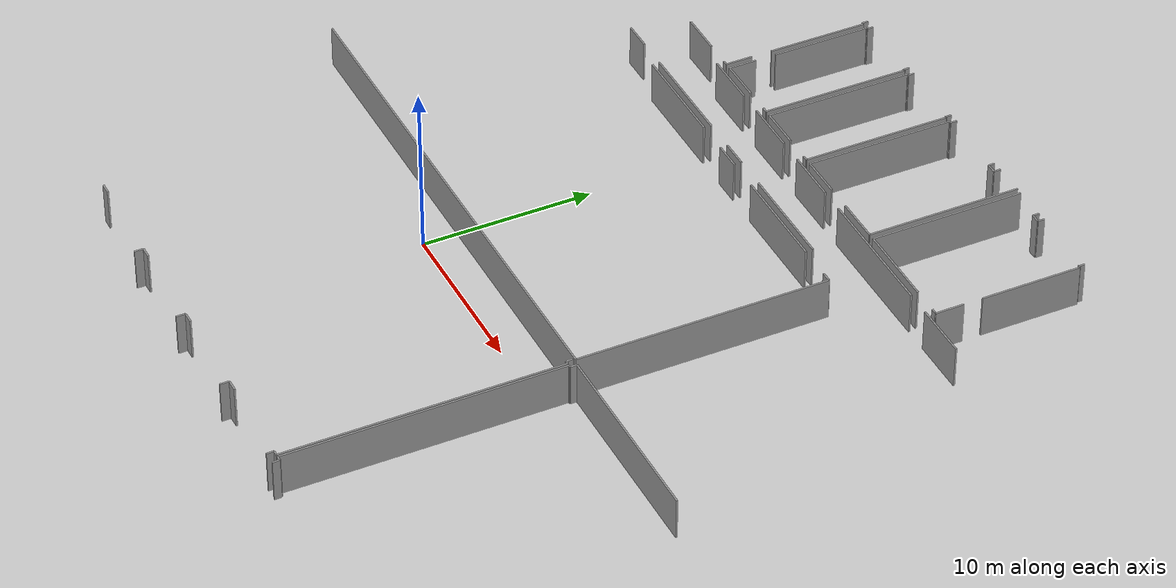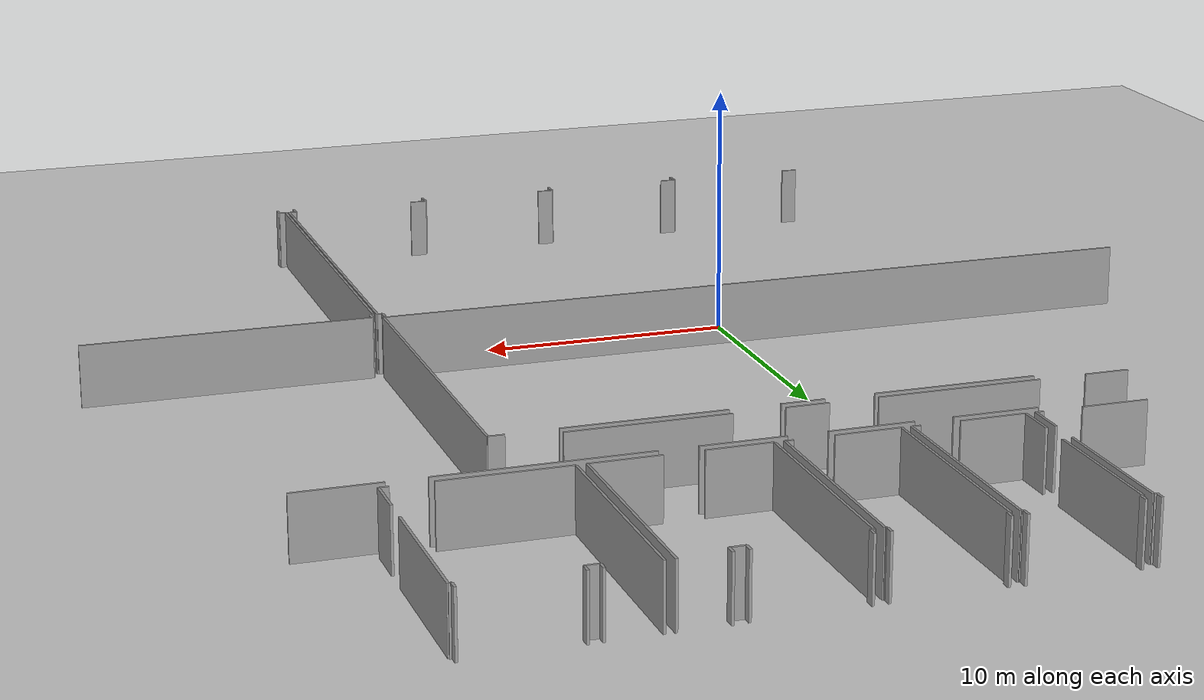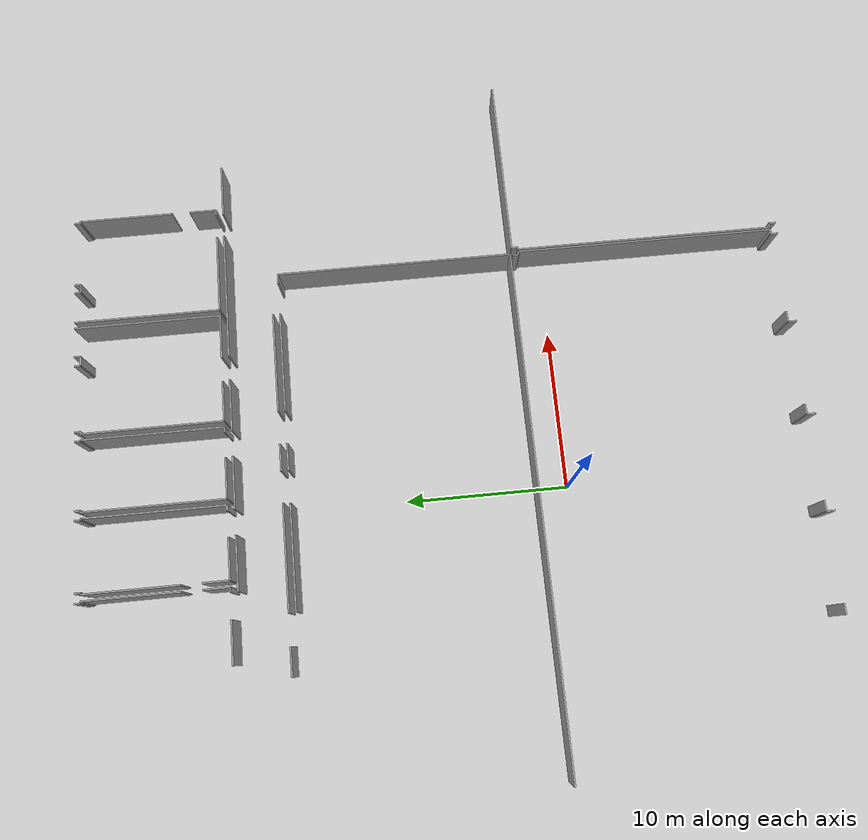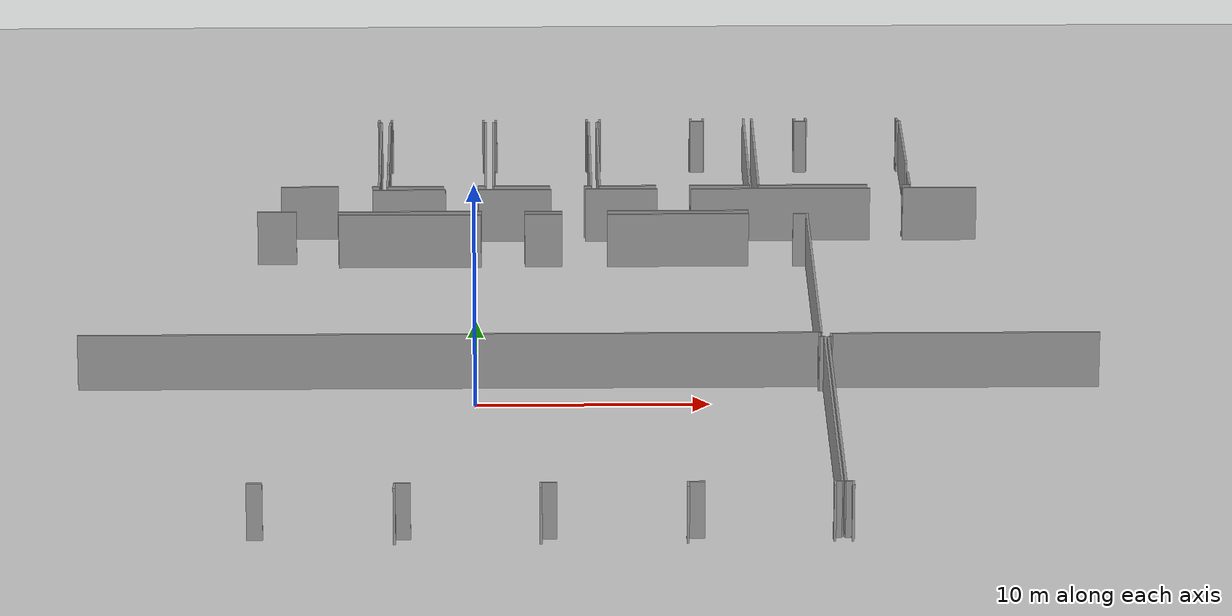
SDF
<sdf version="1.6">
 <world name="default">
  <model name="ground_plane">
   <static>1</static>
   <link name="link">
    <collision name="collision">
     <geometry><plane><normal>0 0 1</normal><size>100 100</size></plane></geometry>
     <surface><friction><ode><mu>100</mu><mu2>50</mu2></ode></friction></surface>
    </collision>
    <visual name="visual">
     <cast_shadows>0</cast_shadows>
     <geometry><plane><normal>0 0 1</normal><size>100 100</size></plane></geometry>
     <material>
      <script><uri>file://media/materials/scripts/gazebo.material</uri><name>Gazebo/Grey</name></script>
     </material>
    </visual>
   </link>
  </model>
  <model name="50010536_PLAN3">
   <static>1</static>
   <link name="Wall_479">
    <collision name="Wall_479_Collision">
     <geometry><box><size>0.376065771514 0.1 2.5</size></box></geometry>
     <pose>0.188032885757 0 1.25 0 0 0</pose>
    </collision>
    <visual name="Wall_479_Visual">
     <pose>0.188032885757 0 1.25 0 0 0</pose>
     <geometry><box><size>0.376065771514 0.1 2.5</size></box></geometry>
     <material>
      <script><uri>file://media/materials/scripts/gazebo.material</uri><name>Gazebo/Grey</name></script>
      <ambient>1 1 1 1</ambient>
     </material>
    </visual>
    <pose>97.9906675555 -0.027095832143 0 0 0 -1.57079632679</pose>
   </link>
   <link name="Wall_480">
    <collision name="Wall_480_Collision">
     <geometry><box><size>0.121893153033 0.1 2.5</size></box></geometry>
     <pose>0.0609465765165 0 1.25 0 0 0</pose>
    </collision>
    <visual name="Wall_480_Visual">
     <pose>0.0609465765165 0 1.25 0 0 0</pose>
     <geometry><box><size>0.121893153033 0.1 2.5</size></box></geometry>
     <material>
      <script><uri>file://media/materials/scripts/gazebo.material</uri><name>Gazebo/Grey</name></script>
      <ambient>1 1 1 1</ambient>
     </material>
    </visual>
    <pose>97.9906675555 -0.403161603657 0 0 0 0.0</pose>
   </link>
   <link name="Wall_481">
    <collision name="Wall_481_Collision">
     <geometry><box><size>5.84365933403 0.1 2.5</size></box></geometry>
     <pose>2.92182966702 0 1.25 0 0 0</pose>
    </collision>
    <visual name="Wall_481_Visual">
     <pose>2.92182966702 0 1.25 0 0 0</pose>
     <geometry><box><size>5.84365933403 0.1 2.5</size></box></geometry>
     <material>
      <script><uri>file://media/materials/scripts/gazebo.material</uri><name>Gazebo/Grey</name></script>
      <ambient>1 1 1 1</ambient>
     </material>
    </visual>
    <pose>98.1125607085 -0.403161603657 0 0 0 -1.57079632679</pose>
   </link>
   <link name="Wall_482">
    <collision name="Wall_482_Collision">
     <geometry><box><size>1.60060946577 0.1 2.5</size></box></geometry>
     <pose>0.800304732883 0 1.25 0 0 0</pose>
    </collision>
    <visual name="Wall_482_Visual">
     <pose>0.800304732883 0 1.25 0 0 0</pose>
     <geometry><box><size>1.60060946577 0.1 2.5</size></box></geometry>
     <material>
      <script><uri>file://media/materials/scripts/gazebo.material</uri><name>Gazebo/Grey</name></script>
      <ambient>1 1 1 1</ambient>
     </material>
    </visual>
    <pose>98.1125607085 -7.46981557312 0 0 0 -1.57079632679</pose>
   </link>
   <link name="Wall_483">
    <collision name="Wall_483_Collision">
     <geometry><box><size>0.304224994445 0.1 2.5</size></box></geometry>
     <pose>0.152112497222 0 1.25 0 0 0</pose>
    </collision>
    <visual name="Wall_483_Visual">
     <pose>0.152112497222 0 1.25 0 0 0</pose>
     <geometry><box><size>0.304224994445 0.1 2.5</size></box></geometry>
     <material>
      <script><uri>file://media/materials/scripts/gazebo.material</uri><name>Gazebo/Grey</name></script>
      <ambient>1 1 1 1</ambient>
     </material>
    </visual>
    <pose>98.1125607085 -9.07042503889 0 0 0 3.14159265359</pose>
   </link>
   <link name="Wall_484">
    <collision name="Wall_484_Collision">
     <geometry><box><size>2.59582532669 0.1 2.5</size></box></geometry>
     <pose>1.29791266334 0 1.25 0 0 0</pose>
    </collision>
    <visual name="Wall_484_Visual">
     <pose>1.29791266334 0 1.25 0 0 0</pose>
     <geometry><box><size>2.59582532669 0.1 2.5</size></box></geometry>
     <material>
      <script><uri>file://media/materials/scripts/gazebo.material</uri><name>Gazebo/Grey</name></script>
      <ambient>1 1 1 1</ambient>
     </material>
    </visual>
    <pose>96.2704504333 -9.07042503889 0 0 0 3.13895129796</pose>
   </link>
   <link name="Wall_485">
    <collision name="Wall_485_Collision">
     <geometry><box><size>1.64327206933 0.1 2.5</size></box></geometry>
     <pose>0.821636034663 0 1.25 0 0 0</pose>
    </collision>
    <visual name="Wall_485_Visual">
     <pose>0.821636034663 0 1.25 0 0 0</pose>
     <geometry><box><size>1.64327206933 0.1 2.5</size></box></geometry>
     <material>
      <script><uri>file://media/materials/scripts/gazebo.material</uri><name>Gazebo/Grey</name></script>
      <ambient>1 1 1 1</ambient>
     </material>
    </visual>
    <pose>98.5043964067 -9.07118687109 0 0 0 1.57079632679</pose>
   </link>
   <link name="Wall_486">
    <collision name="Wall_486_Collision">
     <geometry><box><size>5.79937148843 0.1 2.5</size></box></geometry>
     <pose>2.89968574421 0 1.25 0 0 0</pose>
    </collision>
    <visual name="Wall_486_Visual">
     <pose>2.89968574421 0 1.25 0 0 0</pose>
     <geometry><box><size>5.79937148843 0.1 2.5</size></box></geometry>
     <material>
      <script><uri>file://media/materials/scripts/gazebo.material</uri><name>Gazebo/Grey</name></script>
      <ambient>1 1 1 1</ambient>
     </material>
    </visual>
    <pose>98.5043964067 -6.19577817986 0 0 0 1.57079632679</pose>
   </link>
   <link name="Wall_487">
    <collision name="Wall_487_Collision">
     <geometry><box><size>0.0860870393296 0.1 2.5</size></box></geometry>
     <pose>0.0430435196648 0 1.25 0 0 0</pose>
    </collision>
    <visual name="Wall_487_Visual">
     <pose>0.0430435196648 0 1.25 0 0 0</pose>
     <geometry><box><size>0.0860870393296 0.1 2.5</size></box></geometry>
     <material>
      <script><uri>file://media/materials/scripts/gazebo.material</uri><name>Gazebo/Grey</name></script>
      <ambient>1 1 1 1</ambient>
     </material>
    </visual>
    <pose>98.5043964067 -0.396406691426 0 0 0 0.0</pose>
   </link>
   <link name="Wall_488">
    <collision name="Wall_488_Collision">
     <geometry><box><size>0.375380122528 0.1 2.5</size></box></geometry>
     <pose>0.187690061264 0 1.25 0 0 0</pose>
    </collision>
    <visual name="Wall_488_Visual">
     <pose>0.187690061264 0 1.25 0 0 0</pose>
     <geometry><box><size>0.375380122528 0.1 2.5</size></box></geometry>
     <material>
      <script><uri>file://media/materials/scripts/gazebo.material</uri><name>Gazebo/Grey</name></script>
      <ambient>1 1 1 1</ambient>
     </material>
    </visual>
    <pose>98.590483446 -0.396406691426 0 0 0 1.57079632679</pose>
   </link>
   <link name="Wall_489">
    <collision name="Wall_489_Collision">
     <geometry><box><size>0.374440529473 0.1 2.5</size></box></geometry>
     <pose>0.187220264737 0 1.25 0 0 0</pose>
    </collision>
    <visual name="Wall_489_Visual">
     <pose>0.187220264737 0 1.25 0 0 0</pose>
     <geometry><box><size>0.374440529473 0.1 2.5</size></box></geometry>
     <material>
      <script><uri>file://media/materials/scripts/gazebo.material</uri><name>Gazebo/Grey</name></script>
      <ambient>1 1 1 1</ambient>
     </material>
    </visual>
    <pose>102.836174333 -0.0210265688982 0 0 0 -1.57079632679</pose>
   </link>
   <link name="Wall_490">
    <collision name="Wall_490_Collision">
     <geometry><box><size>0.0942132495318 0.1 2.5</size></box></geometry>
     <pose>0.0471066247659 0 1.25 0 0 0</pose>
    </collision>
    <visual name="Wall_490_Visual">
     <pose>0.0471066247659 0 1.25 0 0 0</pose>
     <geometry><box><size>0.0942132495318 0.1 2.5</size></box></geometry>
     <material>
      <script><uri>file://media/materials/scripts/gazebo.material</uri><name>Gazebo/Grey</name></script>
      <ambient>1 1 1 1</ambient>
     </material>
    </visual>
    <pose>102.836174333 -0.395467098372 0 0 0 0.0</pose>
   </link>
   <link name="Wall_491">
    <collision name="Wall_491_Collision">
     <geometry><box><size>8.67064089134 0.1 2.5</size></box></geometry>
     <pose>4.33532044567 0 1.25 0 0 0</pose>
    </collision>
    <visual name="Wall_491_Visual">
     <pose>4.33532044567 0 1.25 0 0 0</pose>
     <geometry><box><size>8.67064089134 0.1 2.5</size></box></geometry>
     <material>
      <script><uri>file://media/materials/scripts/gazebo.material</uri><name>Gazebo/Grey</name></script>
      <ambient>1 1 1 1</ambient>
     </material>
    </visual>
    <pose>102.930387582 -0.395467098372 0 0 0 -1.57079632679</pose>
   </link>
   <link name="Wall_492">
    <collision name="Wall_492_Collision">
     <geometry><box><size>0.340792940355 0.1 2.5</size></box></geometry>
     <pose>0.170396470177 0 1.25 0 0 0</pose>
    </collision>
    <visual name="Wall_492_Visual">
     <pose>0.170396470177 0 1.25 0 0 0</pose>
     <geometry><box><size>0.340792940355 0.1 2.5</size></box></geometry>
     <material>
      <script><uri>file://media/materials/scripts/gazebo.material</uri><name>Gazebo/Grey</name></script>
      <ambient>1 1 1 1</ambient>
     </material>
    </visual>
    <pose>102.930387582 -9.06610798972 0 0 0 3.14159265359</pose>
   </link>
   <link name="Wall_493">
    <collision name="Wall_493_Collision">
     <geometry><box><size>2.54909562245 0.1 2.5</size></box></geometry>
     <pose>1.27454781123 0 1.25 0 0 0</pose>
    </collision>
    <visual name="Wall_493_Visual">
     <pose>1.27454781123 0 1.25 0 0 0</pose>
     <geometry><box><size>2.54909562245 0.1 2.5</size></box></geometry>
     <material>
      <script><uri>file://media/materials/scripts/gazebo.material</uri><name>Gazebo/Grey</name></script>
      <ambient>1 1 1 1</ambient>
     </material>
    </visual>
    <pose>101.053486969 -9.06610798972 0 0 0 -3.13960022746</pose>
   </link>
   <link name="Wall_494">
    <collision name="Wall_494_Collision">
     <geometry><box><size>8.68054471003 0.1 2.5</size></box></geometry>
     <pose>4.34027235501 0 1.25 0 0 0</pose>
    </collision>
    <visual name="Wall_494_Visual">
     <pose>4.34027235501 0 1.25 0 0 0</pose>
     <geometry><box><size>8.68054471003 0.1 2.5</size></box></geometry>
     <material>
      <script><uri>file://media/materials/scripts/gazebo.material</uri><name>Gazebo/Grey</name></script>
      <ambient>1 1 1 1</ambient>
     </material>
    </visual>
    <pose>103.30597086 -9.0760118084 0 0 0 1.57079632679</pose>
   </link>
   <link name="Wall_495">
    <collision name="Wall_495_Collision">
     <geometry><box><size>0.107672285179 0.1 2.5</size></box></geometry>
     <pose>0.0538361425896 0 1.25 0 0 0</pose>
    </collision>
    <visual name="Wall_495_Visual">
     <pose>0.0538361425896 0 1.25 0 0 0</pose>
     <geometry><box><size>0.107672285179 0.1 2.5</size></box></geometry>
     <material>
      <script><uri>file://media/materials/scripts/gazebo.material</uri><name>Gazebo/Grey</name></script>
      <ambient>1 1 1 1</ambient>
     </material>
    </visual>
    <pose>103.30597086 -0.395467098372 0 0 0 0.0</pose>
   </link>
   <link name="Wall_496">
    <collision name="Wall_496_Collision">
     <geometry><box><size>0.357807192966 0.1 2.5</size></box></geometry>
     <pose>0.178903596483 0 1.25 0 0 0</pose>
    </collision>
    <visual name="Wall_496_Visual">
     <pose>0.178903596483 0 1.25 0 0 0</pose>
     <geometry><box><size>0.357807192966 0.1 2.5</size></box></geometry>
     <material>
      <script><uri>file://media/materials/scripts/gazebo.material</uri><name>Gazebo/Grey</name></script>
      <ambient>1 1 1 1</ambient>
     </material>
    </visual>
    <pose>103.413643145 -0.395467098372 0 0 0 1.57079632679</pose>
   </link>
   <link name="Wall_497">
    <collision name="Wall_497_Collision">
     <geometry><box><size>0.357807192966 0.1 2.5</size></box></geometry>
     <pose>0.178903596483 0 1.25 0 0 0</pose>
    </collision>
    <visual name="Wall_497_Visual">
     <pose>0.178903596483 0 1.25 0 0 0</pose>
     <geometry><box><size>0.357807192966 0.1 2.5</size></box></geometry>
     <material>
      <script><uri>file://media/materials/scripts/gazebo.material</uri><name>Gazebo/Grey</name></script>
      <ambient>1 1 1 1</ambient>
     </material>
    </visual>
    <pose>107.631908072 -0.0376599054058 0 0 0 -1.57079632679</pose>
   </link>
   <link name="Wall_498">
    <collision name="Wall_498_Collision">
     <geometry><box><size>0.0754213884392 0.1 2.5</size></box></geometry>
     <pose>0.0377106942196 0 1.25 0 0 0</pose>
    </collision>
    <visual name="Wall_498_Visual">
     <pose>0.0377106942196 0 1.25 0 0 0</pose>
     <geometry><box><size>0.0754213884392 0.1 2.5</size></box></geometry>
     <material>
      <script><uri>file://media/materials/scripts/gazebo.material</uri><name>Gazebo/Grey</name></script>
      <ambient>1 1 1 1</ambient>
     </material>
    </visual>
    <pose>107.631908072 -0.395467098372 0 0 0 0.0</pose>
   </link>
   <link name="Wall_499">
    <collision name="Wall_499_Collision">
     <geometry><box><size>8.68130654223 0.1 2.5</size></box></geometry>
     <pose>4.34065327112 0 1.25 0 0 0</pose>
    </collision>
    <visual name="Wall_499_Visual">
     <pose>4.34065327112 0 1.25 0 0 0</pose>
     <geometry><box><size>8.68130654223 0.1 2.5</size></box></geometry>
     <material>
      <script><uri>file://media/materials/scripts/gazebo.material</uri><name>Gazebo/Grey</name></script>
      <ambient>1 1 1 1</ambient>
     </material>
    </visual>
    <pose>107.707329461 -0.395467098372 0 0 0 -1.57079632679</pose>
   </link>
   <link name="Wall_500">
    <collision name="Wall_500_Collision">
     <geometry><box><size>0.326572072501 0.1 2.5</size></box></geometry>
     <pose>0.163286036251 0 1.25 0 0 0</pose>
    </collision>
    <visual name="Wall_500_Visual">
     <pose>0.163286036251 0 1.25 0 0 0</pose>
     <geometry><box><size>0.326572072501 0.1 2.5</size></box></geometry>
     <material>
      <script><uri>file://media/materials/scripts/gazebo.material</uri><name>Gazebo/Grey</name></script>
      <ambient>1 1 1 1</ambient>
     </material>
    </visual>
    <pose>107.707329461 -9.07677364061 0 0 0 3.14159265359</pose>
   </link>
   <link name="Wall_501">
    <collision name="Wall_501_Collision">
     <geometry><box><size>2.53055276046 0.1 2.5</size></box></geometry>
     <pose>1.26527638023 0 1.25 0 0 0</pose>
    </collision>
    <visual name="Wall_501_Visual">
     <pose>1.26527638023 0 1.25 0 0 0</pose>
     <geometry><box><size>2.53055276046 0.1 2.5</size></box></geometry>
     <material>
      <script><uri>file://media/materials/scripts/gazebo.material</uri><name>Gazebo/Grey</name></script>
      <ambient>1 1 1 1</ambient>
     </material>
    </visual>
    <pose>105.836523506 -9.07677364061 0 0 0 3.14129159991</pose>
   </link>
   <link name="Wall_502">
    <collision name="Wall_502_Collision">
     <geometry><box><size>8.67610068882 0.1 2.5</size></box></geometry>
     <pose>4.33805034441 0 1.25 0 0 0</pose>
    </collision>
    <visual name="Wall_502_Visual">
     <pose>4.33805034441 0 1.25 0 0 0</pose>
     <geometry><box><size>8.67610068882 0.1 2.5</size></box></geometry>
     <material>
      <script><uri>file://media/materials/scripts/gazebo.material</uri><name>Gazebo/Grey</name></script>
      <ambient>1 1 1 1</ambient>
     </material>
    </visual>
    <pose>108.090023172 -9.08058280164 0 0 0 1.57079632679</pose>
   </link>
   <link name="Wall_503">
    <collision name="Wall_503_Collision">
     <geometry><box><size>0.132812747992 0.1 2.5</size></box></geometry>
     <pose>0.0664063739961 0 1.25 0 0 0</pose>
    </collision>
    <visual name="Wall_503_Visual">
     <pose>0.0664063739961 0 1.25 0 0 0</pose>
     <geometry><box><size>0.132812747992 0.1 2.5</size></box></geometry>
     <material>
      <script><uri>file://media/materials/scripts/gazebo.material</uri><name>Gazebo/Grey</name></script>
      <ambient>1 1 1 1</ambient>
     </material>
    </visual>
    <pose>108.090023172 -0.404482112815 0 0 0 0.0</pose>
   </link>
   <link name="Wall_504">
    <collision name="Wall_504_Collision">
     <geometry><box><size>0.382084245945 0.1 2.5</size></box></geometry>
     <pose>0.191042122972 0 1.25 0 0 0</pose>
    </collision>
    <visual name="Wall_504_Visual">
     <pose>0.191042122972 0 1.25 0 0 0</pose>
     <geometry><box><size>0.382084245945 0.1 2.5</size></box></geometry>
     <material>
      <script><uri>file://media/materials/scripts/gazebo.material</uri><name>Gazebo/Grey</name></script>
      <ambient>1 1 1 1</ambient>
     </material>
    </visual>
    <pose>108.22283592 -0.404482112815 0 0 0 1.57079632679</pose>
   </link>
   <link name="Wall_505">
    <collision name="Wall_505_Collision">
     <geometry><box><size>0.372586737771 0.1 2.5</size></box></geometry>
     <pose>0.186293368886 0 1.25 0 0 0</pose>
    </collision>
    <visual name="Wall_505_Visual">
     <pose>0.186293368886 0 1.25 0 0 0</pose>
     <geometry><box><size>0.372586737771 0.1 2.5</size></box></geometry>
     <material>
      <script><uri>file://media/materials/scripts/gazebo.material</uri><name>Gazebo/Grey</name></script>
      <ambient>1 1 1 1</ambient>
     </material>
    </visual>
    <pose>112.433228581 -0.0223978668698 0 0 0 -1.57079632679</pose>
   </link>
   <link name="Wall_506">
    <collision name="Wall_506_Collision">
     <geometry><box><size>0.588642351522 0.1 2.5</size></box></geometry>
     <pose>0.294321175761 0 1.25 0 0 0</pose>
    </collision>
    <visual name="Wall_506_Visual">
     <pose>0.294321175761 0 1.25 0 0 0</pose>
     <geometry><box><size>0.588642351522 0.1 2.5</size></box></geometry>
     <material>
      <script><uri>file://media/materials/scripts/gazebo.material</uri><name>Gazebo/Grey</name></script>
      <ambient>1 1 1 1</ambient>
     </material>
    </visual>
    <pose>112.433228581 -0.394984604641 0 0 0 0.0</pose>
   </link>
   <link name="Wall_507">
    <collision name="Wall_507_Collision">
     <geometry><box><size>0.393968828366 0.1 2.5</size></box></geometry>
     <pose>0.196984414183 0 1.25 0 0 0</pose>
    </collision>
    <visual name="Wall_507_Visual">
     <pose>0.196984414183 0 1.25 0 0 0</pose>
     <geometry><box><size>0.393968828366 0.1 2.5</size></box></geometry>
     <material>
      <script><uri>file://media/materials/scripts/gazebo.material</uri><name>Gazebo/Grey</name></script>
      <ambient>1 1 1 1</ambient>
     </material>
    </visual>
    <pose>113.021870933 -0.394984604641 0 0 0 1.57079632679</pose>
   </link>
   <link name="Wall_508">
    <collision name="Wall_508_Collision">
     <geometry><box><size>9.06940926261 0.1 2.5</size></box></geometry>
     <pose>4.5347046313 0 1.25 0 0 0</pose>
    </collision>
    <visual name="Wall_508_Visual">
     <pose>4.5347046313 0 1.25 0 0 0</pose>
     <geometry><box><size>9.06940926261 0.1 2.5</size></box></geometry>
     <material>
      <script><uri>file://media/materials/scripts/gazebo.material</uri><name>Gazebo/Grey</name></script>
      <ambient>1 1 1 1</ambient>
     </material>
    </visual>
    <pose>114.896739993 -0.00101577627527 0 0 0 -1.57079632679</pose>
   </link>
   <link name="Wall_509">
    <collision name="Wall_509_Collision">
     <geometry><box><size>2.73269212456 0.1 2.5</size></box></geometry>
     <pose>1.36634606228 0 1.25 0 0 0</pose>
    </collision>
    <visual name="Wall_509_Visual">
     <pose>1.36634606228 0 1.25 0 0 0</pose>
     <geometry><box><size>2.73269212456 0.1 2.5</size></box></geometry>
     <material>
      <script><uri>file://media/materials/scripts/gazebo.material</uri><name>Gazebo/Grey</name></script>
      <ambient>1 1 1 1</ambient>
     </material>
    </visual>
    <pose>114.896739993 -9.07042503889 0 0 0 3.14159265359</pose>
   </link>
   <link name="Wall_510">
    <collision name="Wall_510_Collision">
     <geometry><box><size>2.55088839572 0.1 2.5</size></box></geometry>
     <pose>1.27544419786 0 1.25 0 0 0</pose>
    </collision>
    <visual name="Wall_510_Visual">
     <pose>1.27544419786 0 1.25 0 0 0</pose>
     <geometry><box><size>2.55088839572 0.1 2.5</size></box></geometry>
     <material>
      <script><uri>file://media/materials/scripts/gazebo.material</uri><name>Gazebo/Grey</name></script>
      <ambient>1 1 1 1</ambient>
     </material>
    </visual>
    <pose>110.640891344 -9.07042503889 0 0 0 -3.137610594</pose>
   </link>
   <link name="Wall_511">
    <collision name="Wall_511_Collision">
     <geometry><box><size>9.03812335333 0.1 2.5</size></box></geometry>
     <pose>4.51906167667 0 1.25 0 0 0</pose>
    </collision>
    <visual name="Wall_511_Visual">
     <pose>4.51906167667 0 1.25 0 0 0</pose>
     <geometry><box><size>9.03812335333 0.1 2.5</size></box></geometry>
     <material>
      <script><uri>file://media/materials/scripts/gazebo.material</uri><name>Gazebo/Grey</name></script>
      <ambient>1 1 1 1</ambient>
     </material>
    </visual>
    <pose>115.286544139 -9.0605212202 0 0 0 1.57079632679</pose>
   </link>
   <link name="Wall_512">
    <collision name="Wall_512_Collision">
     <geometry><box><size>0.382084245945 0.1 2.5</size></box></geometry>
     <pose>0.191042122972 0 1.25 0 0 0</pose>
    </collision>
    <visual name="Wall_512_Visual">
     <pose>0.191042122972 0 1.25 0 0 0</pose>
     <geometry><box><size>0.382084245945 0.1 2.5</size></box></geometry>
     <material>
      <script><uri>file://media/materials/scripts/gazebo.material</uri><name>Gazebo/Grey</name></script>
      <ambient>1 1 1 1</ambient>
     </material>
    </visual>
    <pose>117.25638828 -0.0223978668698 0 0 0 -1.57079632679</pose>
   </link>
   <link name="Wall_513">
    <collision name="Wall_513_Collision">
     <geometry><box><size>0.534806208932 0.1 2.5</size></box></geometry>
     <pose>0.267403104466 0 1.25 0 0 0</pose>
    </collision>
    <visual name="Wall_513_Visual">
     <pose>0.267403104466 0 1.25 0 0 0</pose>
     <geometry><box><size>0.534806208932 0.1 2.5</size></box></geometry>
     <material>
      <script><uri>file://media/materials/scripts/gazebo.material</uri><name>Gazebo/Grey</name></script>
      <ambient>1 1 1 1</ambient>
     </material>
    </visual>
    <pose>117.25638828 -0.404482112815 0 0 0 0.0</pose>
   </link>
   <link name="Wall_514">
    <collision name="Wall_514_Collision">
     <geometry><box><size>0.398463638384 0.1 2.5</size></box></geometry>
     <pose>0.199231819192 0 1.25 0 0 0</pose>
    </collision>
    <visual name="Wall_514_Visual">
     <pose>0.199231819192 0 1.25 0 0 0</pose>
     <geometry><box><size>0.398463638384 0.1 2.5</size></box></geometry>
     <material>
      <script><uri>file://media/materials/scripts/gazebo.material</uri><name>Gazebo/Grey</name></script>
      <ambient>1 1 1 1</ambient>
     </material>
    </visual>
    <pose>117.791194489 -0.404482112815 0 0 0 1.57079632679</pose>
   </link>
   <link name="Wall_515">
    <collision name="Wall_515_Collision">
     <geometry><box><size>0.371164650986 0.1 2.5</size></box></geometry>
     <pose>0.185582325493 0 1.25 0 0 0</pose>
    </collision>
    <visual name="Wall_515_Visual">
     <pose>0.185582325493 0 1.25 0 0 0</pose>
     <geometry><box><size>0.371164650986 0.1 2.5</size></box></geometry>
     <material>
      <script><uri>file://media/materials/scripts/gazebo.material</uri><name>Gazebo/Grey</name></script>
      <ambient>1 1 1 1</ambient>
     </material>
    </visual>
    <pose>122.016061962 -0.00601847443101 0 0 0 -1.57079632679</pose>
   </link>
   <link name="Wall_516">
    <collision name="Wall_516_Collision">
     <geometry><box><size>0.125448369996 0.1 2.5</size></box></geometry>
     <pose>0.0627241849982 0 1.25 0 0 0</pose>
    </collision>
    <visual name="Wall_516_Visual">
     <pose>0.0627241849982 0 1.25 0 0 0</pose>
     <geometry><box><size>0.125448369996 0.1 2.5</size></box></geometry>
     <material>
      <script><uri>file://media/materials/scripts/gazebo.material</uri><name>Gazebo/Grey</name></script>
      <ambient>1 1 1 1</ambient>
     </material>
    </visual>
    <pose>122.016061962 -0.377183125417 0 0 0 0.0</pose>
   </link>
   <link name="Wall_517">
    <collision name="Wall_517_Collision">
     <geometry><box><size>5.89528616322 0.1 2.5</size></box></geometry>
     <pose>2.94764308161 0 1.25 0 0 0</pose>
    </collision>
    <visual name="Wall_517_Visual">
     <pose>2.94764308161 0 1.25 0 0 0</pose>
     <geometry><box><size>5.89528616322 0.1 2.5</size></box></geometry>
     <material>
      <script><uri>file://media/materials/scripts/gazebo.material</uri><name>Gazebo/Grey</name></script>
      <ambient>1 1 1 1</ambient>
     </material>
    </visual>
    <pose>122.141510332 -0.377183125417 0 0 0 -1.57079632679</pose>
   </link>
   <link name="Wall_518">
    <collision name="Wall_518_Collision">
     <geometry><box><size>1.68974383392 0.1 2.5</size></box></geometry>
     <pose>0.84487191696 0 1.25 0 0 0</pose>
    </collision>
    <visual name="Wall_518_Visual">
     <pose>0.84487191696 0 1.25 0 0 0</pose>
     <geometry><box><size>1.68974383392 0.1 2.5</size></box></geometry>
     <material>
      <script><uri>file://media/materials/scripts/gazebo.material</uri><name>Gazebo/Grey</name></script>
      <ambient>1 1 1 1</ambient>
     </material>
    </visual>
    <pose>122.141510332 -7.37687204393 0 0 0 -1.57079632679</pose>
   </link>
   <link name="Wall_519">
    <collision name="Wall_519_Collision">
     <geometry><box><size>0.354251976002 0.1 2.5</size></box></geometry>
     <pose>0.177125988001 0 1.25 0 0 0</pose>
    </collision>
    <visual name="Wall_519_Visual">
     <pose>0.177125988001 0 1.25 0 0 0</pose>
     <geometry><box><size>0.354251976002 0.1 2.5</size></box></geometry>
     <material>
      <script><uri>file://media/materials/scripts/gazebo.material</uri><name>Gazebo/Grey</name></script>
      <ambient>1 1 1 1</ambient>
     </material>
    </visual>
    <pose>122.141510332 -9.06661587785 0 0 0 3.14159265359</pose>
   </link>
   <link name="Wall_520">
    <collision name="Wall_520_Collision">
     <geometry><box><size>4.93820012322 0.1 2.5</size></box></geometry>
     <pose>2.46910006161 0 1.25 0 0 0</pose>
    </collision>
    <visual name="Wall_520_Visual">
     <pose>2.46910006161 0 1.25 0 0 0</pose>
     <geometry><box><size>4.93820012322 0.1 2.5</size></box></geometry>
     <material>
      <script><uri>file://media/materials/scripts/gazebo.material</uri><name>Gazebo/Grey</name></script>
      <ambient>1 1 1 1</ambient>
     </material>
    </visual>
    <pose>120.224740501 -9.06661587785 0 0 0 3.14035846724</pose>
   </link>
   <link name="Wall_596">
    <collision name="Wall_596_Collision">
     <geometry><box><size>3.30965304892 0.1 2.5</size></box></geometry>
     <pose>1.65482652446 0 1.25 0 0 0</pose>
    </collision>
    <visual name="Wall_596_Visual">
     <pose>1.65482652446 0 1.25 0 0 0</pose>
     <geometry><box><size>3.30965304892 0.1 2.5</size></box></geometry>
     <material>
      <script><uri>file://media/materials/scripts/gazebo.material</uri><name>Gazebo/Grey</name></script>
      <ambient>1 1 1 1</ambient>
     </material>
    </visual>
    <pose>97.819255309 -9.51355743897 0 0 0 0.0</pose>
   </link>
   <link name="Wall_597">
    <collision name="Wall_597_Collision">
     <geometry><box><size>3.27054566232 0.1 2.5</size></box></geometry>
     <pose>1.63527283116 0 1.25 0 0 0</pose>
    </collision>
    <visual name="Wall_597_Visual">
     <pose>1.63527283116 0 1.25 0 0 0</pose>
     <geometry><box><size>3.27054566232 0.1 2.5</size></box></geometry>
     <material>
      <script><uri>file://media/materials/scripts/gazebo.material</uri><name>Gazebo/Grey</name></script>
      <ambient>1 1 1 1</ambient>
     </material>
    </visual>
    <pose>102.628955972 -9.51355743897 0 0 0 0.0</pose>
   </link>
   <link name="Wall_598">
    <collision name="Wall_598_Collision">
     <geometry><box><size>3.26114973177 0.1 2.5</size></box></geometry>
     <pose>1.63057486589 0 1.25 0 0 0</pose>
    </collision>
    <visual name="Wall_598_Visual">
     <pose>1.63057486589 0 1.25 0 0 0</pose>
     <geometry><box><size>3.26114973177 0.1 2.5</size></box></geometry>
     <material>
      <script><uri>file://media/materials/scripts/gazebo.material</uri><name>Gazebo/Grey</name></script>
      <ambient>1 1 1 1</ambient>
     </material>
    </visual>
    <pose>107.442211853 -9.51355743897 0 0 0 0.0</pose>
   </link>
   <link name="Wall_599">
    <collision name="Wall_599_Collision">
     <geometry><box><size>8.11757610386 0.1 2.5</size></box></geometry>
     <pose>4.05878805193 0 1.25 0 0 0</pose>
    </collision>
    <visual name="Wall_599_Visual">
     <pose>4.05878805193 0 1.25 0 0 0</pose>
     <geometry><box><size>8.11757610386 0.1 2.5</size></box></geometry>
     <material>
      <script><uri>file://media/materials/scripts/gazebo.material</uri><name>Gazebo/Grey</name></script>
      <ambient>1 1 1 1</ambient>
     </material>
    </visual>
    <pose>112.200615814 -9.51355743897 0 0 0 0.0</pose>
   </link>
   <link name="Wall_600">
    <collision name="Wall_600_Collision">
     <geometry><box><size>3.3309843507 0.1 2.5</size></box></geometry>
     <pose>1.66549217535 0 1.25 0 0 0</pose>
    </collision>
    <visual name="Wall_600_Visual">
     <pose>1.66549217535 0 1.25 0 0 0</pose>
     <geometry><box><size>3.3309843507 0.1 2.5</size></box></geometry>
     <material>
      <script><uri>file://media/materials/scripts/gazebo.material</uri><name>Gazebo/Grey</name></script>
      <ambient>1 1 1 1</ambient>
     </material>
    </visual>
    <pose>121.807319938 -9.51355743897 0 0 0 0.0</pose>
   </link>
   <link name="Wall_612">
    <collision name="Wall_612_Collision">
     <geometry><box><size>6.31279560677 0.1 2.5</size></box></geometry>
     <pose>3.15639780338 0 1.25 0 0 0</pose>
    </collision>
    <visual name="Wall_612_Visual">
     <pose>3.15639780338 0 1.25 0 0 0</pose>
     <geometry><box><size>6.31279560677 0.1 2.5</size></box></geometry>
     <material>
      <script><uri>file://media/materials/scripts/gazebo.material</uri><name>Gazebo/Grey</name></script>
      <ambient>1 1 1 1</ambient>
     </material>
    </visual>
    <pose>114.697139955 -12.3722058217 0 0 0 3.14159265359</pose>
   </link>
   <link name="Wall_613">
    <collision name="Wall_613_Collision">
     <geometry><box><size>1.68161762372 0.1 2.5</size></box></geometry>
     <pose>0.840808811859 0 1.25 0 0 0</pose>
    </collision>
    <visual name="Wall_613_Visual">
     <pose>0.840808811859 0 1.25 0 0 0</pose>
     <geometry><box><size>1.68161762372 0.1 2.5</size></box></geometry>
     <material>
      <script><uri>file://media/materials/scripts/gazebo.material</uri><name>Gazebo/Grey</name></script>
      <ambient>1 1 1 1</ambient>
     </material>
    </visual>
    <pose>106.365742945 -12.3722058217 0 0 0 3.14159265359</pose>
   </link>
   <link name="Wall_614">
    <collision name="Wall_614_Collision">
     <geometry><box><size>6.43773608863 0.1 2.5</size></box></geometry>
     <pose>3.21886804431 0 1.25 0 0 0</pose>
    </collision>
    <visual name="Wall_614_Visual">
     <pose>3.21886804431 0 1.25 0 0 0</pose>
     <geometry><box><size>6.43773608863 0.1 2.5</size></box></geometry>
     <material>
      <script><uri>file://media/materials/scripts/gazebo.material</uri><name>Gazebo/Grey</name></script>
      <ambient>1 1 1 1</ambient>
     </material>
    </visual>
    <pose>102.754912231 -12.3722058217 0 0 0 3.14159265359</pose>
   </link>
   <link name="Wall_615">
    <collision name="Wall_615_Collision">
     <geometry><box><size>1.73977081548 0.1 2.5</size></box></geometry>
     <pose>0.869885407739 0 1.25 0 0 0</pose>
    </collision>
    <visual name="Wall_615_Visual">
     <pose>0.869885407739 0 1.25 0 0 0</pose>
     <geometry><box><size>1.73977081548 0.1 2.5</size></box></geometry>
     <material>
      <script><uri>file://media/materials/scripts/gazebo.material</uri><name>Gazebo/Grey</name></script>
      <ambient>1 1 1 1</ambient>
     </material>
    </visual>
    <pose>94.4494175158 -12.3722058217 0 0 0 3.14159265359</pose>
   </link>
   <link name="Wall_643">
    <collision name="Wall_643_Collision">
     <geometry><box><size>6.37475795956 0.1 2.5</size></box></geometry>
     <pose>3.18737897978 0 1.25 0 0 0</pose>
    </collision>
    <visual name="Wall_643_Visual">
     <pose>3.18737897978 0 1.25 0 0 0</pose>
     <geometry><box><size>6.37475795956 0.1 2.5</size></box></geometry>
     <material>
      <script><uri>file://media/materials/scripts/gazebo.material</uri><name>Gazebo/Grey</name></script>
      <ambient>1 1 1 1</ambient>
     </material>
    </visual>
    <pose>96.3572993048 -12.8028949624 0 0 0 0.0</pose>
   </link>
   <link name="Wall_644">
    <collision name="Wall_644_Collision">
     <geometry><box><size>1.68974383392 0.1 2.5</size></box></geometry>
     <pose>0.84487191696 0 1.25 0 0 0</pose>
    </collision>
    <visual name="Wall_644_Visual">
     <pose>0.84487191696 0 1.25 0 0 0</pose>
     <geometry><box><size>1.68974383392 0.1 2.5</size></box></geometry>
     <material>
      <script><uri>file://media/materials/scripts/gazebo.material</uri><name>Gazebo/Grey</name></script>
      <ambient>1 1 1 1</ambient>
     </material>
    </visual>
    <pose>104.689204203 -12.8028949624 0 0 0 0.0</pose>
   </link>
   <link name="Wall_645">
    <collision name="Wall_645_Collision">
     <geometry><box><size>6.34479255944 0.1 2.5</size></box></geometry>
     <pose>3.17239627972 0 1.25 0 0 0</pose>
    </collision>
    <visual name="Wall_645_Visual">
     <pose>3.17239627972 0 1.25 0 0 0</pose>
     <geometry><box><size>6.34479255944 0.1 2.5</size></box></geometry>
     <material>
      <script><uri>file://media/materials/scripts/gazebo.material</uri><name>Gazebo/Grey</name></script>
      <ambient>1 1 1 1</ambient>
     </material>
    </visual>
    <pose>108.374186585 -12.8028949624 0 0 0 0.0</pose>
   </link>
   <link name="Wall_646">
    <collision name="Wall_646_Collision">
     <geometry><box><size>0.625972129638 0.1 2.5</size></box></geometry>
     <pose>0.312986064819 0 1.25 0 0 0</pose>
    </collision>
    <visual name="Wall_646_Visual">
     <pose>0.312986064819 0 1.25 0 0 0</pose>
     <geometry><box><size>0.625972129638 0.1 2.5</size></box></geometry>
     <material>
      <script><uri>file://media/materials/scripts/gazebo.material</uri><name>Gazebo/Grey</name></script>
      <ambient>1 1 1 1</ambient>
     </material>
    </visual>
    <pose>116.706091483 -12.8028949624 0 0 0 0.0</pose>
   </link>
   <link name="Wall_647">
    <collision name="Wall_647_Collision">
     <geometry><box><size>14.7912262324 0.1 2.5</size></box></geometry>
     <pose>7.39561311621 0 1.25 0 0 0</pose>
    </collision>
    <visual name="Wall_647_Visual">
     <pose>7.39561311621 0 1.25 0 0 0</pose>
     <geometry><box><size>14.7912262324 0.1 2.5</size></box></geometry>
     <material>
      <script><uri>file://media/materials/scripts/gazebo.material</uri><name>Gazebo/Grey</name></script>
      <ambient>1 1 1 1</ambient>
     </material>
    </visual>
    <pose>117.332063613 -12.8028949624 0 0 0 -1.57079632679</pose>
   </link>
   <link name="Wall_648">
    <collision name="Wall_648_Collision">
     <geometry><box><size>31.8709965142 0.1 2.5</size></box></geometry>
     <pose>15.9354982571 0 1.25 0 0 0</pose>
    </collision>
    <visual name="Wall_648_Visual">
     <pose>15.9354982571 0 1.25 0 0 0</pose>
     <geometry><box><size>31.8709965142 0.1 2.5</size></box></geometry>
     <material>
      <script><uri>file://media/materials/scripts/gazebo.material</uri><name>Gazebo/Grey</name></script>
      <ambient>1 1 1 1</ambient>
     </material>
    </visual>
    <pose>117.332063613 -27.5941211948 0 0 0 -3.14151297485</pose>
   </link>
   <link name="Wall_650">
    <collision name="Wall_650_Collision">
     <geometry><box><size>0.373551725233 0.1 2.5</size></box></geometry>
     <pose>0.186775862616 0 1.25 0 0 0</pose>
    </collision>
    <visual name="Wall_650_Visual">
     <pose>0.186775862616 0 1.25 0 0 0</pose>
     <geometry><box><size>0.373551725233 0.1 2.5</size></box></geometry>
     <material>
      <script><uri>file://media/materials/scripts/gazebo.material</uri><name>Gazebo/Grey</name></script>
      <ambient>1 1 1 1</ambient>
     </material>
    </visual>
    <pose>117.245214741 -27.7325207123 0 0 0 -1.57079632679</pose>
   </link>
   <link name="Wall_651">
    <collision name="Wall_651_Collision">
     <geometry><box><size>0.215852458496 0.1 2.5</size></box></geometry>
     <pose>0.107926229248 0 1.25 0 0 0</pose>
    </collision>
    <visual name="Wall_651_Visual">
     <pose>0.107926229248 0 1.25 0 0 0</pose>
     <geometry><box><size>0.215852458496 0.1 2.5</size></box></geometry>
     <material>
      <script><uri>file://media/materials/scripts/gazebo.material</uri><name>Gazebo/Grey</name></script>
      <ambient>1 1 1 1</ambient>
     </material>
    </visual>
    <pose>117.245214741 -28.1060724375 0 0 0 0.0</pose>
   </link>
   <link name="Wall_652">
    <collision name="Wall_652_Collision">
     <geometry><box><size>16.2417547535 0.1 2.5</size></box></geometry>
     <pose>8.12087737676 0 1.25 0 0 0</pose>
    </collision>
    <visual name="Wall_652_Visual">
     <pose>8.12087737676 0 1.25 0 0 0</pose>
     <geometry><box><size>16.2417547535 0.1 2.5</size></box></geometry>
     <material>
      <script><uri>file://media/materials/scripts/gazebo.material</uri><name>Gazebo/Grey</name></script>
      <ambient>1 1 1 1</ambient>
     </material>
    </visual>
    <pose>117.4610672 -28.1060724375 0 0 0 -1.57079632679</pose>
   </link>
   <link name="Wall_653">
    <collision name="Wall_653_Collision">
     <geometry><box><size>0.299907945275 0.1 2.5</size></box></geometry>
     <pose>0.149953972638 0 1.25 0 0 0</pose>
    </collision>
    <visual name="Wall_653_Visual">
     <pose>0.149953972638 0 1.25 0 0 0</pose>
     <geometry><box><size>0.299907945275 0.1 2.5</size></box></geometry>
     <material>
      <script><uri>file://media/materials/scripts/gazebo.material</uri><name>Gazebo/Grey</name></script>
      <ambient>1 1 1 1</ambient>
     </material>
    </visual>
    <pose>117.4610672 -44.3478271911 0 0 0 3.14159265359</pose>
   </link>
   <link name="Wall_654">
    <collision name="Wall_654_Collision">
     <geometry><box><size>0.445671840777 0.1 2.5</size></box></geometry>
     <pose>0.222835920389 0 1.25 0 0 0</pose>
    </collision>
    <visual name="Wall_654_Visual">
     <pose>0.222835920389 0 1.25 0 0 0</pose>
     <geometry><box><size>0.445671840777 0.1 2.5</size></box></geometry>
     <material>
      <script><uri>file://media/materials/scripts/gazebo.material</uri><name>Gazebo/Grey</name></script>
      <ambient>1 1 1 1</ambient>
     </material>
    </visual>
    <pose>117.161159255 -44.3478271911 0 0 0 -1.57079632679</pose>
   </link>
   <link name="Wall_657">
    <collision name="Wall_657_Collision">
     <geometry><box><size>0.701647462146 0.1 2.5</size></box></geometry>
     <pose>0.350823731073 0 1.25 0 0 0</pose>
    </collision>
    <visual name="Wall_657_Visual">
     <pose>0.350823731073 0 1.25 0 0 0</pose>
     <geometry><box><size>0.701647462146 0.1 2.5</size></box></geometry>
     <material>
      <script><uri>file://media/materials/scripts/gazebo.material</uri><name>Gazebo/Grey</name></script>
      <ambient>1 1 1 1</ambient>
     </material>
    </visual>
    <pose>111.890550106 -44.343764086 0 0 0 3.14159265359</pose>
   </link>
   <link name="Wall_658">
    <collision name="Wall_658_Collision">
     <geometry><box><size>0.557153286989 0.1 2.5</size></box></geometry>
     <pose>0.278576643494 0 1.25 0 0 0</pose>
    </collision>
    <visual name="Wall_658_Visual">
     <pose>0.278576643494 0 1.25 0 0 0</pose>
     <geometry><box><size>0.557153286989 0.1 2.5</size></box></geometry>
     <material>
      <script><uri>file://media/materials/scripts/gazebo.material</uri><name>Gazebo/Grey</name></script>
      <ambient>1 1 1 1</ambient>
     </material>
    </visual>
    <pose>111.188902644 -44.343764086 0 0 0 -1.57079632679</pose>
   </link>
   <link name="Wall_661">
    <collision name="Wall_661_Collision">
     <geometry><box><size>0.661524299273 0.1 2.5</size></box></geometry>
     <pose>0.330762149637 0 1.25 0 0 0</pose>
    </collision>
    <visual name="Wall_661_Visual">
     <pose>0.330762149637 0 1.25 0 0 0</pose>
     <geometry><box><size>0.661524299273 0.1 2.5</size></box></geometry>
     <material>
      <script><uri>file://media/materials/scripts/gazebo.material</uri><name>Gazebo/Grey</name></script>
      <ambient>1 1 1 1</ambient>
     </material>
    </visual>
    <pose>105.861410024 -44.3600165064 0 0 0 3.14159265359</pose>
   </link>
   <link name="Wall_662">
    <collision name="Wall_662_Collision">
     <geometry><box><size>0.552328349681 0.1 2.5</size></box></geometry>
     <pose>0.27616417484 0 1.25 0 0 0</pose>
    </collision>
    <visual name="Wall_662_Visual">
     <pose>0.27616417484 0 1.25 0 0 0</pose>
     <geometry><box><size>0.552328349681 0.1 2.5</size></box></geometry>
     <material>
      <script><uri>file://media/materials/scripts/gazebo.material</uri><name>Gazebo/Grey</name></script>
      <ambient>1 1 1 1</ambient>
     </material>
    </visual>
    <pose>105.199885725 -44.3600165064 0 0 0 -1.57079632679</pose>
   </link>
   <link name="Wall_665">
    <collision name="Wall_665_Collision">
     <geometry><box><size>0.664571628099 0.1 2.5</size></box></geometry>
     <pose>0.332285814049 0 1.25 0 0 0</pose>
    </collision>
    <visual name="Wall_665_Visual">
     <pose>0.332285814049 0 1.25 0 0 0</pose>
     <geometry><box><size>0.664571628099 0.1 2.5</size></box></geometry>
     <material>
      <script><uri>file://media/materials/scripts/gazebo.material</uri><name>Gazebo/Grey</name></script>
      <ambient>1 1 1 1</ambient>
     </material>
    </visual>
    <pose>99.9028663937 -44.3749992064 0 0 0 3.14159265359</pose>
   </link>
   <link name="Wall_666">
    <collision name="Wall_666_Collision">
     <geometry><box><size>0.536329873345 0.1 2.5</size></box></geometry>
     <pose>0.268164936673 0 1.25 0 0 0</pose>
    </collision>
    <visual name="Wall_666_Visual">
     <pose>0.268164936673 0 1.25 0 0 0</pose>
     <geometry><box><size>0.536329873345 0.1 2.5</size></box></geometry>
     <material>
      <script><uri>file://media/materials/scripts/gazebo.material</uri><name>Gazebo/Grey</name></script>
      <ambient>1 1 1 1</ambient>
     </material>
    </visual>
    <pose>99.2382947656 -44.3749992064 0 0 0 -1.57079632679</pose>
   </link>
   <link name="Wall_669">
    <collision name="Wall_669_Collision">
     <geometry><box><size>0.664571628099 0.1 2.5</size></box></geometry>
     <pose>0.332285814049 0 1.25 0 0 0</pose>
    </collision>
    <visual name="Wall_669_Visual">
     <pose>0.332285814049 0 1.25 0 0 0</pose>
     <geometry><box><size>0.664571628099 0.1 2.5</size></box></geometry>
     <material>
      <script><uri>file://media/materials/scripts/gazebo.material</uri><name>Gazebo/Grey</name></script>
      <ambient>1 1 1 1</ambient>
     </material>
    </visual>
    <pose>93.8749960321 -44.3371615402 0 0 0 3.14159265359</pose>
   </link>
   <link name="Wall_821">
    <collision name="Wall_821_Collision">
     <geometry><box><size>16.2290575501 0.1 2.5</size></box></geometry>
     <pose>8.11452877504 0 1.25 0 0 0</pose>
    </collision>
    <visual name="Wall_821_Visual">
     <pose>8.11452877504 0 1.25 0 0 0</pose>
     <geometry><box><size>16.2290575501 0.1 2.5</size></box></geometry>
     <material>
      <script><uri>file://media/materials/scripts/gazebo.material</uri><name>Gazebo/Grey</name></script>
      <ambient>1 1 1 1</ambient>
     </material>
    </visual>
    <pose>117.612417865 -44.3478271911 0 0 0 1.57079632679</pose>
   </link>
   <link name="Wall_822">
    <collision name="Wall_822_Collision">
     <geometry><box><size>0.136875853093 0.1 2.5</size></box></geometry>
     <pose>0.0684379265467 0 1.25 0 0 0</pose>
    </collision>
    <visual name="Wall_822_Visual">
     <pose>0.0684379265467 0 1.25 0 0 0</pose>
     <geometry><box><size>0.136875853093 0.1 2.5</size></box></geometry>
     <material>
      <script><uri>file://media/materials/scripts/gazebo.material</uri><name>Gazebo/Grey</name></script>
      <ambient>1 1 1 1</ambient>
     </material>
    </visual>
    <pose>117.612417865 -28.118769641 0 0 0 0.0</pose>
   </link>
   <link name="Wall_823">
    <collision name="Wall_823_Collision">
     <geometry><box><size>0.398692188046 0.1 2.5</size></box></geometry>
     <pose>0.199346094023 0 1.25 0 0 0</pose>
    </collision>
    <visual name="Wall_823_Visual">
     <pose>0.199346094023 0 1.25 0 0 0</pose>
     <geometry><box><size>0.398692188046 0.1 2.5</size></box></geometry>
     <material>
      <script><uri>file://media/materials/scripts/gazebo.material</uri><name>Gazebo/Grey</name></script>
      <ambient>1 1 1 1</ambient>
     </material>
    </visual>
    <pose>117.749293718 -28.118769641 0 0 0 1.57079632679</pose>
   </link>
   <link name="Wall_824">
    <collision name="Wall_824_Collision">
     <geometry><box><size>11.5247436752 0.1 2.5</size></box></geometry>
     <pose>5.7623718376 0 1.25 0 0 0</pose>
    </collision>
    <visual name="Wall_824_Visual">
     <pose>5.7623718376 0 1.25 0 0 0</pose>
     <geometry><box><size>11.5247436752 0.1 2.5</size></box></geometry>
     <material>
      <script><uri>file://media/materials/scripts/gazebo.material</uri><name>Gazebo/Grey</name></script>
      <ambient>1 1 1 1</ambient>
     </material>
    </visual>
    <pose>117.749293718 -27.7200774529 0 0 0 0.0</pose>
   </link>
   <link name="Wall_846">
    <collision name="Wall_846_Collision">
     <geometry><box><size>0.422562930515 0.1 2.5</size></box></geometry>
     <pose>0.211281465257 0 1.25 0 0 0</pose>
    </collision>
    <visual name="Wall_846_Visual">
     <pose>0.211281465257 0 1.25 0 0 0</pose>
     <geometry><box><size>0.422562930515 0.1 2.5</size></box></geometry>
     <material>
      <script><uri>file://media/materials/scripts/gazebo.material</uri><name>Gazebo/Grey</name></script>
      <ambient>1 1 1 1</ambient>
     </material>
    </visual>
    <pose>117.905977209 -44.7833412691 0 0 0 1.57079632679</pose>
   </link>
   <link name="Wall_847">
    <collision name="Wall_847_Collision">
     <geometry><box><size>0.293844891754 0.1 2.5</size></box></geometry>
     <pose>0.146922445877 0 1.25 0 0 0</pose>
    </collision>
    <visual name="Wall_847_Visual">
     <pose>0.146922445877 0 1.25 0 0 0</pose>
     <geometry><box><size>0.293844891754 0.1 2.5</size></box></geometry>
     <material>
      <script><uri>file://media/materials/scripts/gazebo.material</uri><name>Gazebo/Grey</name></script>
      <ambient>1 1 1 1</ambient>
     </material>
    </visual>
    <pose>117.905977209 -44.3607783386 0 0 0 3.09750359619</pose>
   </link>
   <pose>-102.5 29.6500539631 0 0 0 0</pose>
  </model>
 </world>
</sdf>
